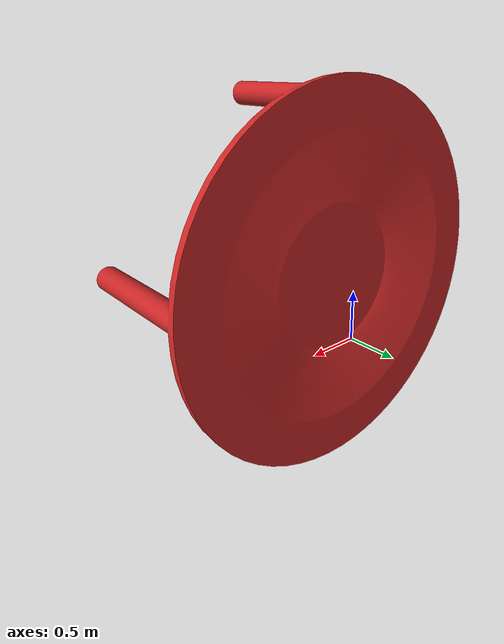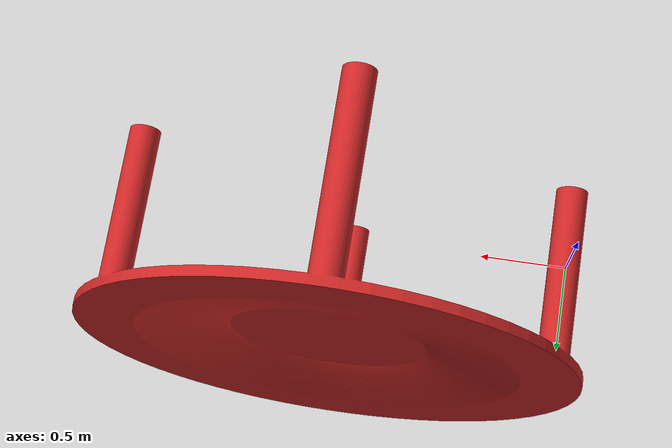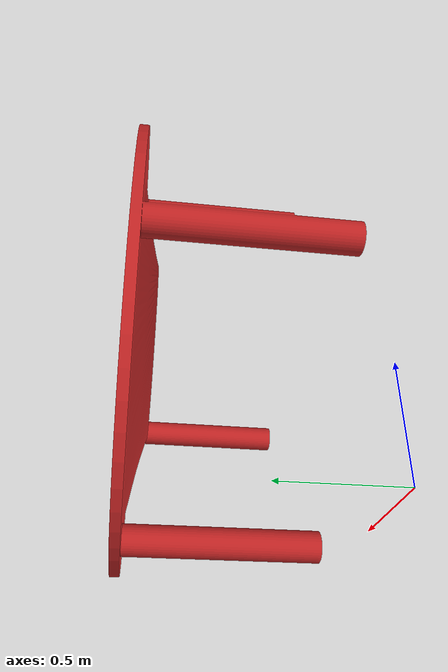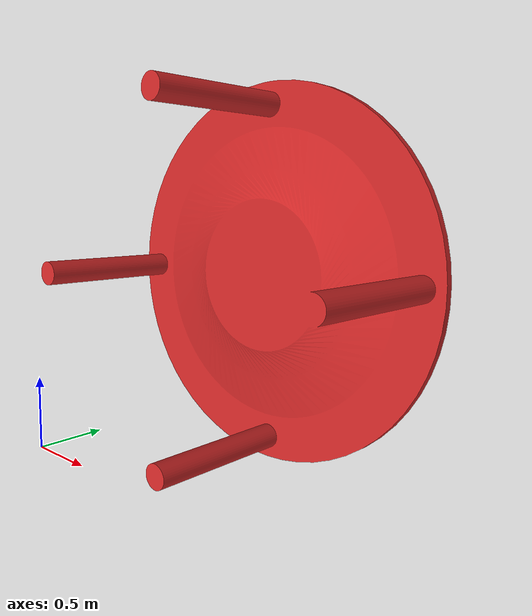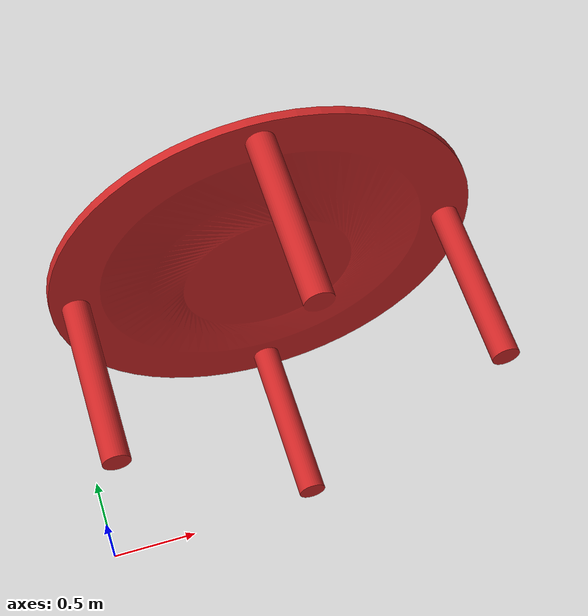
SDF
<?xml version="1.0" ?>
<sdf version="1.5">
  <model name="water_release_target">
    <static>true</static>
    <link name="link">
      <collision name="collision">
        <geometry>
          <mesh>
            <uri>model://water_release_target/meshes/water_release_target.dae</uri>
            <scale>0.002 0.002 0.002</scale>
          </mesh>
        </geometry>
        <surface>
          <friction>
            <ode>
              <mu>100</mu>
              <mu2>50</mu2>
            </ode>
          </friction>
        </surface>
      </collision>
      <visual name="visual">
        <geometry>
          <mesh>
            <uri>model://water_release_target/meshes/water_release_target.dae</uri>
            <scale>0.001 0.001 0.001</scale>
          </mesh>
        </geometry>
        <material>
          <script>
            <uri>file://media/materials/scripts/gazebo.material</uri>
            <name>Gazebo/Red</name>
          </script>
        </material>
      </visual>
    </link>
  </model>
</sdf>
